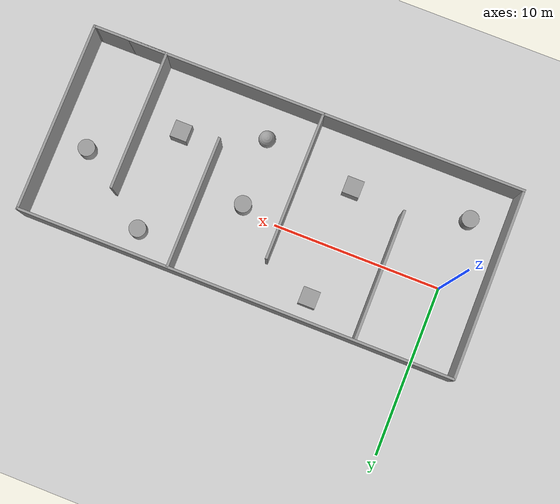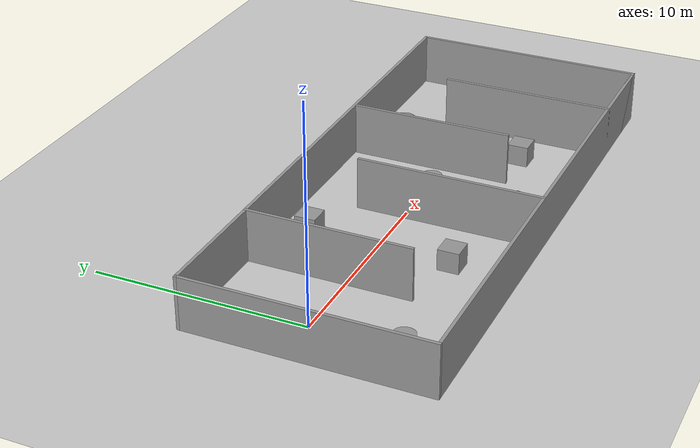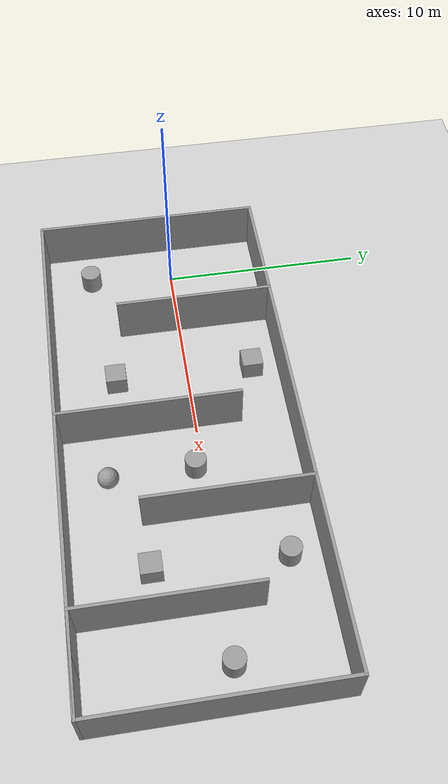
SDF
<sdf version="1.7">
 <world name="default">
  <light name="sun" type="directional">
   <pose>0 0 10 0 -0 0</pose>
   <diffuse>0.8 0.8 0.8 1</diffuse>
   <specular>0.2 0.2 0.2 1</specular>
   <attenuation>
    <range>1000</range>
    <constant>0.9</constant>
    <linear>0.01</linear>
    <quadratic>0.001</quadratic>
   </attenuation>
   <direction>-0.5 0.1 -0.9</direction>
   <spot><inner_angle>0</inner_angle><outer_angle>0</outer_angle><falloff>0</falloff></spot>
  </light>
  <model name="ground_plane">
   <static>1</static>
   <link name="link">
    <collision name="collision">
     <geometry><plane><normal>0 0 1</normal><size>100 100</size></plane></geometry>
     <surface><friction><ode><mu>100</mu><mu2>50</mu2></ode></friction></surface>
    </collision>
    <visual name="visual">
     <cast_shadows>0</cast_shadows>
     <geometry><plane><normal>0 0 1</normal><size>100 100</size></plane></geometry>
     <material>
      <script><uri>file://media/materials/scripts/gazebo.material</uri><name>Gazebo/Grey</name></script>
     </material>
    </visual>
   </link>
  </model>
  <gravity>0 0 -9.8</gravity>
  <magnetic_field>6e-06 2.3e-05 -4.2e-05</magnetic_field>
  <atmosphere type="adiabatic"/>
  <physics type="ode">
   <max_step_size>0.001</max_step_size>
   <real_time_factor>1</real_time_factor>
   <real_time_update_rate>1000</real_time_update_rate>
  </physics>
  <scene><ambient>0.4 0.4 0.4 1</ambient><background>0.7 0.7 0.7 1</background><shadows>1</shadows></scene>
  <audio><device>default</device></audio>
  <spherical_coordinates>
   <surface_model>EARTH_WGS84</surface_model>
   <latitude_deg>0</latitude_deg>
   <longitude_deg>0</longitude_deg>
   <elevation>0</elevation>
   <heading_deg>0</heading_deg>
  </spherical_coordinates>
  <model name="mygo.world">
   <pose>10.5615 -0.923226 0 0 -0 0</pose>
   <link name="Wall_12">
    <collision name="Wall_12_Collision">
     <geometry><box><size>7.75 0.15 2.5</size></box></geometry>
     <pose>0 0 1.25 0 -0 0</pose>
    </collision>
    <visual name="Wall_12_Visual">
     <pose>0 0 1.25 0 -0 0</pose>
     <geometry><box><size>7.75 0.15 2.5</size></box></geometry>
     <material>
      <script><uri>file://media/materials/scripts/gazebo.material</uri><name>Gazebo/Grey</name></script>
      <ambient>1 1 1 1</ambient>
     </material>
     <meta><layer>0</layer></meta>
    </visual>
    <pose>-7.06394 1.74474 0 0 -0 -1.5708</pose>
   </link>
   <link name="Wall_14">
    <collision name="Wall_14_Collision">
     <geometry><box><size>8.75 0.15 2.5</size></box></geometry>
     <pose>0 0 1.25 0 -0 0</pose>
    </collision>
    <visual name="Wall_14_Visual">
     <pose>0 0 1.25 0 -0 0</pose>
     <geometry><box><size>8.75 0.15 2.5</size></box></geometry>
     <material>
      <script><uri>file://media/materials/scripts/gazebo.material</uri><name>Gazebo/Grey</name></script>
      <ambient>1 1 1 1</ambient>
     </material>
     <meta><layer>0</layer></meta>
    </visual>
    <pose>-0.957459 -1.21169 0 0 -0 1.5708</pose>
   </link>
   <link name="Wall_16">
    <collision name="Wall_16_Collision">
     <geometry><box><size>7.75 0.15 2.5</size></box></geometry>
     <pose>0 0 1.25 0 -0 0</pose>
    </collision>
    <visual name="Wall_16_Visual">
     <pose>0 0 1.25 0 -0 0</pose>
     <geometry><box><size>7.75 0.15 2.5</size></box></geometry>
     <material>
      <script><uri>file://media/materials/scripts/gazebo.material</uri><name>Gazebo/Grey</name></script>
      <ambient>1 1 1 1</ambient>
     </material>
     <meta><layer>0</layer></meta>
    </visual>
    <pose>3.9231 1.67535 0 0 -0 -1.5708</pose>
   </link>
   <link name="Wall_18">
    <collision name="Wall_18_Collision">
     <geometry><box><size>8.25 0.15 2.5</size></box></geometry>
     <pose>0 0 1.25 0 -0 0</pose>
    </collision>
    <visual name="Wall_18_Visual">
     <pose>0 0 1.25 0 -0 0</pose>
     <geometry><box><size>8.25 0.15 2.5</size></box></geometry>
     <material>
      <script><uri>file://media/materials/scripts/gazebo.material</uri><name>Gazebo/Grey</name></script>
      <ambient>1 1 1 1</ambient>
     </material>
     <meta><layer>0</layer></meta>
    </visual>
    <pose>8.45 -1.5 0 0 -0 1.5708</pose>
   </link>
   <link name="Wall_4">
    <collision name="Wall_4_Collision">
     <geometry><box><size>11.25 0.15 2.5</size></box></geometry>
     <pose>0 0 1.25 0 -0 0</pose>
    </collision>
    <visual name="Wall_4_Visual">
     <pose>0 0 1.25 0 -0 0</pose>
     <geometry><box><size>11.25 0.15 2.5</size></box></geometry>
     <material>
      <script><uri>file://media/materials/scripts/gazebo.material</uri><name>Gazebo/Grey</name></script>
      <ambient>1 1 1 1</ambient>
     </material>
     <meta><layer>0</layer></meta>
    </visual>
    <pose>-12.8 -0 0 0 -0 -1.5708</pose>
   </link>
   <link name="Wall_5">
    <collision name="Wall_5_Collision">
     <geometry><box><size>25.5 0.15 2.5</size></box></geometry>
     <pose>0 0 1.25 0 -0 0</pose>
    </collision>
    <visual name="Wall_5_Visual">
     <pose>0 0 1.25 0 -0 0</pose>
     <geometry><box><size>25.5 0.15 2.5</size></box></geometry>
     <material>
      <script><uri>file://media/materials/scripts/gazebo.material</uri><name>Gazebo/Grey</name></script>
      <ambient>1 1 1 1</ambient>
     </material>
     <meta><layer>0</layer></meta>
    </visual>
    <pose>-0.125 -5.55 0 0 -0 0</pose>
   </link>
   <link name="Wall_7">
    <collision name="Wall_7_Collision">
     <geometry><box><size>25.75 0.15 2.5</size></box></geometry>
     <pose>0 0 1.25 0 -0 0</pose>
    </collision>
    <visual name="Wall_7_Visual">
     <pose>0 0 1.25 0 -0 0</pose>
     <geometry><box><size>25.75 0.15 2.5</size></box></geometry>
     <material>
      <script><uri>file://media/materials/scripts/gazebo.material</uri><name>Gazebo/Grey</name></script>
      <ambient>1 1 1 1</ambient>
     </material>
     <meta><layer>0</layer></meta>
    </visual>
    <pose>0 5.55 0 0 -0 0</pose>
   </link>
   <link name="Wall_8">
    <collision name="Wall_8_Collision">
     <geometry><box><size>11.25 0.15 2.5</size></box></geometry>
     <pose>0 0 1.25 0 -0 0</pose>
    </collision>
    <visual name="Wall_8_Visual">
     <pose>0 0 1.25 0 -0 0</pose>
     <geometry><box><size>11.25 0.15 2.5</size></box></geometry>
     <material>
      <script><uri>file://media/materials/scripts/gazebo.material</uri><name>Gazebo/Grey</name></script>
      <ambient>1 1 1 1</ambient>
     </material>
     <meta><layer>0</layer></meta>
    </visual>
    <pose>12.8 -0 0 0 -0 -1.5708</pose>
   </link>
   <link name="Wall_9">
    <collision name="Wall_9_Collision">
     <geometry><box><size>4.5 0.15 2.5</size></box></geometry>
     <pose>0 0 1.25 0 -0 0</pose>
    </collision>
    <visual name="Wall_9_Visual">
     <pose>0 0 1.25 0 -0 0</pose>
     <geometry><box><size>4.5 0.15 2.5</size></box></geometry>
     <material>
      <script><uri>file://media/materials/scripts/gazebo.material</uri><name>Gazebo/Grey</name></script>
      <ambient>1 1 1 1</ambient>
     </material>
     <meta><layer>0</layer></meta>
    </visual>
    <pose>10.625 -5.55 0 0 -0 3.14159</pose>
   </link>
   <static>1</static>
  </model>
  <model name="unit_box">
   <pose>6.59447 -3.52278 0.499995 -1e-05 -0 -0</pose>
   <link name="link">
    <inertial>
     <mass>1</mass>
     <inertia>
      <ixx>0.166667</ixx>
      <ixy>0</ixy>
      <ixz>0</ixz>
      <iyy>0.166667</iyy>
      <iyz>0</iyz>
      <izz>0.166667</izz>
     </inertia>
    </inertial>
    <collision name="collision"><geometry><box><size>1 1 1</size></box></geometry></collision>
    <visual name="visual">
     <geometry><box><size>1 1 1</size></box></geometry>
     <material>
      <script><name>Gazebo/Grey</name><uri>file://media/materials/scripts/gazebo.material</uri></script>
     </material>
    </visual>
   </link>
  </model>
  <model name="unit_box_0">
   <pose>6.64712 3.21931 0.499995 0 1e-05 0</pose>
   <link name="link">
    <inertial>
     <mass>1</mass>
     <inertia>
      <ixx>0.166667</ixx>
      <ixy>0</ixy>
      <ixz>0</ixz>
      <iyy>0.166667</iyy>
      <iyz>0</iyz>
      <izz>0.166667</izz>
     </inertia>
    </inertial>
    <collision name="collision"><geometry><box><size>1 1 1</size></box></geometry></collision>
    <visual name="visual">
     <geometry><box><size>1 1 1</size></box></geometry>
     <material>
      <script><name>Gazebo/Grey</name><uri>file://media/materials/scripts/gazebo.material</uri></script>
     </material>
    </visual>
   </link>
  </model>
  <model name="unit_cylinder">
   <pose>-0.194298 -4.22484 0.499998 3e-06 -4e-06 0</pose>
   <link name="link">
    <inertial>
     <mass>1</mass>
     <inertia><ixx>0.145833</ixx><ixy>0</ixy><ixz>0</ixz><iyy>0.145833</iyy><iyz>0</iyz><izz>0.125</izz></inertia>
    </inertial>
    <collision name="collision">
     <geometry><cylinder><radius>0.5</radius><length>1</length></cylinder></geometry>
    </collision>
    <visual name="visual">
     <geometry><cylinder><radius>0.5</radius><length>1</length></cylinder></geometry>
     <material>
      <script><name>Gazebo/Grey</name><uri>file://media/materials/scripts/gazebo.material</uri></script>
     </material>
    </visual>
   </link>
  </model>
  <model name="unit_sphere">
   <pose>12.1557 -4.40469 0.5 0 -0 0</pose>
   <link name="link">
    <inertial>
     <mass>1</mass>
     <inertia><ixx>0.1</ixx><ixy>0</ixy><ixz>0</ixz><iyy>0.1</iyy><iyz>0</iyz><izz>0.1</izz></inertia>
    </inertial>
    <collision name="collision"><geometry><sphere><radius>0.5</radius></sphere></geometry></collision>
    <visual name="visual">
     <geometry><sphere><radius>0.5</radius></sphere></geometry>
     <material>
      <script><name>Gazebo/Grey</name><uri>file://media/materials/scripts/gazebo.material</uri></script>
     </material>
    </visual>
   </link>
  </model>
  <model name="unit_cylinder_0">
   <pose>12.0342 -0.34155 0.499993 -3e-06 -3e-06 0</pose>
   <link name="link">
    <inertial>
     <mass>1</mass>
     <inertia><ixx>0.145833</ixx><ixy>0</ixy><ixz>0</ixz><iyy>0.145833</iyy><iyz>0</iyz><izz>0.125</izz></inertia>
    </inertial>
    <collision name="collision">
     <geometry><cylinder><radius>0.5</radius><length>1</length></cylinder></geometry>
    </collision>
    <visual name="visual">
     <geometry><cylinder><radius>0.5</radius><length>1</length></cylinder></geometry>
     <material>
      <script><name>Gazebo/Grey</name><uri>file://media/materials/scripts/gazebo.material</uri></script>
     </material>
    </visual>
   </link>
  </model>
  <model name="unit_box_1">
   <pose>16.8448 -2.97136 0.499995 0 1e-05 0</pose>
   <link name="link">
    <inertial>
     <mass>1</mass>
     <inertia>
      <ixx>0.166667</ixx>
      <ixy>0</ixy>
      <ixz>0</ixz>
      <iyy>0.166667</iyy>
      <iyz>0</iyz>
      <izz>0.166667</izz>
     </inertia>
    </inertial>
    <collision name="collision"><geometry><box><size>1 1 1</size></box></geometry></collision>
    <visual name="visual">
     <geometry><box><size>1 1 1</size></box></geometry>
     <material>
      <script><name>Gazebo/Grey</name><uri>file://media/materials/scripts/gazebo.material</uri></script>
     </material>
    </visual>
   </link>
  </model>
  <model name="unit_cylinder_1">
   <pose>17.0339 3.11349 0.499993 -3e-06 -4e-06 -0</pose>
   <link name="link">
    <inertial>
     <mass>1</mass>
     <inertia><ixx>0.145833</ixx><ixy>0</ixy><ixz>0</ixz><iyy>0.145833</iyy><iyz>0</iyz><izz>0.125</izz></inertia>
    </inertial>
    <collision name="collision">
     <geometry><cylinder><radius>0.5</radius><length>1</length></cylinder></geometry>
    </collision>
    <visual name="visual">
     <geometry><cylinder><radius>0.5</radius><length>1</length></cylinder></geometry>
     <material>
      <script><name>Gazebo/Grey</name><uri>file://media/materials/scripts/gazebo.material</uri></script>
     </material>
    </visual>
   </link>
  </model>
  <model name="unit_cylinder_2">
   <pose>21.4726 -0.109211 0.499997 3e-06 4e-06 -0</pose>
   <link name="link">
    <inertial>
     <mass>1</mass>
     <inertia><ixx>0.145833</ixx><ixy>0</ixy><ixz>0</ixz><iyy>0.145833</iyy><iyz>0</iyz><izz>0.125</izz></inertia>
    </inertial>
    <collision name="collision">
     <geometry><cylinder><radius>0.5</radius><length>1</length></cylinder></geometry>
    </collision>
    <visual name="visual">
     <geometry><cylinder><radius>0.5</radius><length>1</length></cylinder></geometry>
     <material>
      <script><name>Gazebo/Grey</name><uri>file://media/materials/scripts/gazebo.material</uri></script>
     </material>
    </visual>
   </link>
  </model>
 </world>
</sdf>
